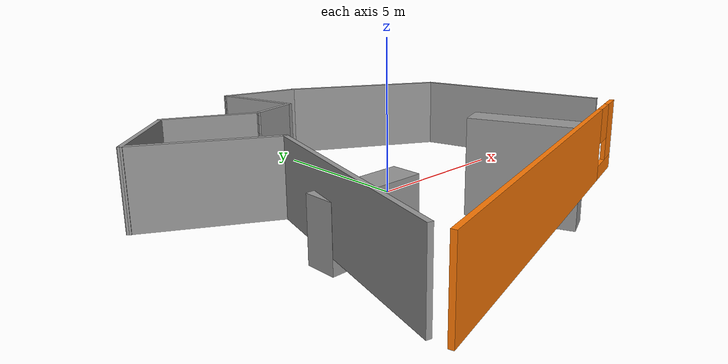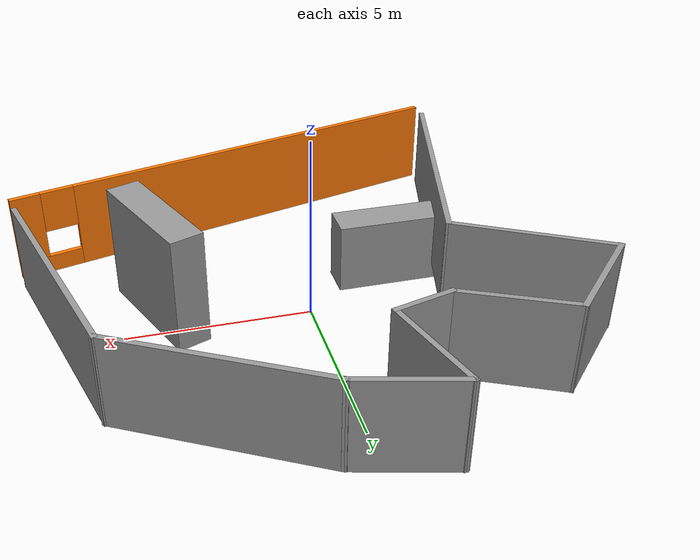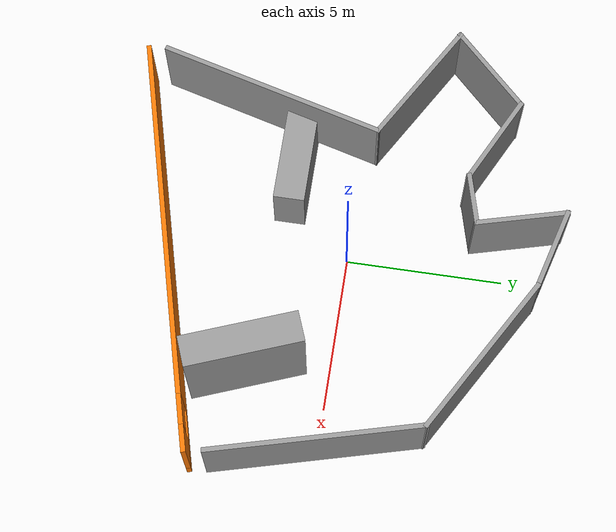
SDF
<?xml version='1.0'?>
<sdf version='1.6'>
  <model name='Untitled'>
    <link name='Wall_0'>
      <pose frame=''>-6.27688 3.71893 0 0 0 -2.35619</pose>
      <self_collide>0</self_collide>
      <kinematic>0</kinematic>
      <visual name='Wall_0_Visual'>
        <pose frame=''>0 0 1.25 0 -0 0</pose>
        <geometry>
          <box>
            <size>3.25 0.15 2.5</size>
          </box>
        </geometry>
        <material>
          <script>
            <uri>file://media/materials/scripts/gazebo.material</uri>
            <name>Gazebo/Grey</name>
          </script>
          <ambient>1 1 1 1</ambient>
          <shader type='pixel'/>
          <diffuse>0.7 0.7 0.7 1</diffuse>
          <specular>0.01 0.01 0.01 1</specular>
          <emissive>0 0 0 1</emissive>
        </material>
        <meta>
          <layer>0</layer>
        </meta>
        <transparency>0</transparency>
        <cast_shadows>1</cast_shadows>
      </visual>
      <collision name='Wall_0_Collision'>
        <laser_retro>0</laser_retro>
        <max_contacts>10</max_contacts>
        <pose frame=''>0 0 1.25 0 -0 0</pose>
        <geometry>
          <box>
            <size>3.25 0.15 2.5</size>
          </box>
        </geometry>
        <surface>
          <friction>
            <ode>
              <mu>1</mu>
              <mu2>1</mu2>
              <fdir1>0 0 0</fdir1>
              <slip1>0</slip1>
              <slip2>0</slip2>
            </ode>
            <torsional>
              <coefficient>1</coefficient>
              <patch_radius>0</patch_radius>
              <surface_radius>0</surface_radius>
              <use_patch_radius>1</use_patch_radius>
              <ode>
                <slip>0</slip>
              </ode>
            </torsional>
          </friction>
          <bounce>
            <restitution_coefficient>0</restitution_coefficient>
            <threshold>1e+06</threshold>
          </bounce>
          <contact>
            <collide_without_contact>0</collide_without_contact>
            <collide_without_contact_bitmask>1</collide_without_contact_bitmask>
            <collide_bitmask>1</collide_bitmask>
            <ode>
              <soft_cfm>0</soft_cfm>
              <soft_erp>0.2</soft_erp>
              <kp>1e+13</kp>
              <kd>1</kd>
              <max_vel>0.01</max_vel>
              <min_depth>0</min_depth>
            </ode>
            <bullet>
              <split_impulse>1</split_impulse>
              <split_impulse_penetration_threshold>-0.01</split_impulse_penetration_threshold>
              <soft_cfm>0</soft_cfm>
              <soft_erp>0.2</soft_erp>
              <kp>1e+13</kp>
              <kd>1</kd>
            </bullet>
          </contact>
        </surface>
      </collision>
    </link>
    <link name='Wall_1'>
      <pose frame=''>-5.48929 1.53542 0 0 0 -0.523599</pose>
      <self_collide>0</self_collide>
      <kinematic>0</kinematic>
      <visual name='Wall_1_Visual'>
        <pose frame=''>0 0 1.25 0 -0 0</pose>
        <geometry>
          <box>
            <size>4.5 0.15 2.5</size>
          </box>
        </geometry>
        <material>
          <script>
            <uri>file://media/materials/scripts/gazebo.material</uri>
            <name>Gazebo/Grey</name>
          </script>
          <ambient>1 1 1 1</ambient>
          <shader type='pixel'/>
          <diffuse>0.7 0.7 0.7 1</diffuse>
          <specular>0.01 0.01 0.01 1</specular>
          <emissive>0 0 0 1</emissive>
        </material>
        <meta>
          <layer>0</layer>
        </meta>
        <transparency>0</transparency>
        <cast_shadows>1</cast_shadows>
      </visual>
      <collision name='Wall_1_Collision'>
        <laser_retro>0</laser_retro>
        <max_contacts>10</max_contacts>
        <pose frame=''>0 0 1.25 0 -0 0</pose>
        <geometry>
          <box>
            <size>4.5 0.15 2.5</size>
          </box>
        </geometry>
        <surface>
          <friction>
            <ode>
              <mu>1</mu>
              <mu2>1</mu2>
              <fdir1>0 0 0</fdir1>
              <slip1>0</slip1>
              <slip2>0</slip2>
            </ode>
            <torsional>
              <coefficient>1</coefficient>
              <patch_radius>0</patch_radius>
              <surface_radius>0</surface_radius>
              <use_patch_radius>1</use_patch_radius>
              <ode>
                <slip>0</slip>
              </ode>
            </torsional>
          </friction>
          <bounce>
            <restitution_coefficient>0</restitution_coefficient>
            <threshold>1e+06</threshold>
          </bounce>
          <contact>
            <collide_without_contact>0</collide_without_contact>
            <collide_without_contact_bitmask>1</collide_without_contact_bitmask>
            <collide_bitmask>1</collide_bitmask>
            <ode>
              <soft_cfm>0</soft_cfm>
              <soft_erp>0.2</soft_erp>
              <kp>1e+13</kp>
              <kd>1</kd>
              <max_vel>0.01</max_vel>
              <min_depth>0</min_depth>
            </ode>
            <bullet>
              <split_impulse>1</split_impulse>
              <split_impulse_penetration_threshold>-0.01</split_impulse_penetration_threshold>
              <soft_cfm>0</soft_cfm>
              <soft_erp>0.2</soft_erp>
              <kp>1e+13</kp>
              <kd>1</kd>
            </bullet>
          </contact>
        </surface>
      </collision>
    </link>
    <link name='Wall_2'>
      <pose frame=''>-4.55684 -3.10186 0 0 0 -1.8326</pose>
      <self_collide>0</self_collide>
      <kinematic>0</kinematic>
      <visual name='Wall_2_Visual'>
        <pose frame=''>0 0 1.25 0 -0 0</pose>
        <geometry>
          <box>
            <size>7.5 0.15 2.5</size>
          </box>
        </geometry>
        <material>
          <script>
            <uri>file://media/materials/scripts/gazebo.material</uri>
            <name>Gazebo/Grey</name>
          </script>
          <ambient>1 1 1 1</ambient>
          <shader type='pixel'/>
          <diffuse>0.7 0.7 0.7 1</diffuse>
          <specular>0.01 0.01 0.01 1</specular>
          <emissive>0 0 0 1</emissive>
        </material>
        <meta>
          <layer>0</layer>
        </meta>
        <transparency>0</transparency>
        <cast_shadows>1</cast_shadows>
      </visual>
      <collision name='Wall_2_Collision'>
        <laser_retro>0</laser_retro>
        <max_contacts>10</max_contacts>
        <pose frame=''>0 0 1.25 0 -0 0</pose>
        <geometry>
          <box>
            <size>7.5 0.15 2.5</size>
          </box>
        </geometry>
        <surface>
          <friction>
            <ode>
              <mu>1</mu>
              <mu2>1</mu2>
              <fdir1>0 0 0</fdir1>
              <slip1>0</slip1>
              <slip2>0</slip2>
            </ode>
            <torsional>
              <coefficient>1</coefficient>
              <patch_radius>0</patch_radius>
              <surface_radius>0</surface_radius>
              <use_patch_radius>1</use_patch_radius>
              <ode>
                <slip>0</slip>
              </ode>
            </torsional>
          </friction>
          <bounce>
            <restitution_coefficient>0</restitution_coefficient>
            <threshold>1e+06</threshold>
          </bounce>
          <contact>
            <collide_without_contact>0</collide_without_contact>
            <collide_without_contact_bitmask>1</collide_without_contact_bitmask>
            <collide_bitmask>1</collide_bitmask>
            <ode>
              <soft_cfm>0</soft_cfm>
              <soft_erp>0.2</soft_erp>
              <kp>1e+13</kp>
              <kd>1</kd>
              <max_vel>0.01</max_vel>
              <min_depth>0</min_depth>
            </ode>
            <bullet>
              <split_impulse>1</split_impulse>
              <split_impulse_penetration_threshold>-0.01</split_impulse_penetration_threshold>
              <soft_cfm>0</soft_cfm>
              <soft_erp>0.2</soft_erp>
              <kp>1e+13</kp>
              <kd>1</kd>
            </bullet>
          </contact>
        </surface>
      </collision>
    </link>
    <link name='Wall_3'>
      <pose frame=''>1.02123 -5.51923 0 0 -0 0.261799</pose>
      <self_collide>0</self_collide>
      <kinematic>0</kinematic>
      <visual name='Wall_3_Visual_0'>
        <pose frame=''>-0.895801 0 1.25 0 -0 0</pose>
        <geometry>
          <box>
            <size>11.7084 0.15 2.5</size>
          </box>
        </geometry>
        <material>
          <script>
            <uri>file://media/materials/scripts/gazebo.material</uri>
            <name>Gazebo/Grey</name>
          </script>
          <ambient>0.996078 0.47451 0.0196078 1</ambient>
          <shader type='pixel'/>
          <diffuse>0.7 0.7 0.7 1</diffuse>
          <specular>0.01 0.01 0.01 1</specular>
          <emissive>0 0 0 1</emissive>
        </material>
        <meta>
          <layer>0</layer>
        </meta>
        <transparency>0</transparency>
        <cast_shadows>1</cast_shadows>
      </visual>
      <visual name='Wall_3_Visual_1'>
        <pose frame=''>5.8542 0 0.25 0 -0 0</pose>
        <geometry>
          <box>
            <size>1.7916 0.15 0.5</size>
          </box>
        </geometry>
        <material>
          <script>
            <uri>file://media/materials/scripts/gazebo.material</uri>
            <name>Gazebo/Grey</name>
          </script>
          <ambient>0.996078 0.47451 0.0196078 1</ambient>
          <shader type='pixel'/>
          <diffuse>0.7 0.7 0.7 1</diffuse>
          <specular>0.01 0.01 0.01 1</specular>
          <emissive>0 0 0 1</emissive>
        </material>
        <meta>
          <layer>0</layer>
        </meta>
        <transparency>0</transparency>
        <cast_shadows>1</cast_shadows>
      </visual>
      <visual name='Wall_3_Visual_2'>
        <pose frame=''>6.32604 0 1.5 0 -0 0</pose>
        <geometry>
          <box>
            <size>0.847917 0.15 2</size>
          </box>
        </geometry>
        <material>
          <script>
            <uri>file://media/materials/scripts/gazebo.material</uri>
            <name>Gazebo/Grey</name>
          </script>
          <ambient>0.996078 0.47451 0.0196078 1</ambient>
          <shader type='pixel'/>
          <diffuse>0.7 0.7 0.7 1</diffuse>
          <specular>0.01 0.01 0.01 1</specular>
          <emissive>0 0 0 1</emissive>
        </material>
        <meta>
          <layer>0</layer>
        </meta>
        <transparency>0</transparency>
        <cast_shadows>1</cast_shadows>
      </visual>
      <visual name='Wall_3_Visual_3'>
        <pose frame=''>5.43024 0 1.9 0 -0 0</pose>
        <geometry>
          <box>
            <size>0.943685 0.15 1.2</size>
          </box>
        </geometry>
        <material>
          <script>
            <uri>file://media/materials/scripts/gazebo.material</uri>
            <name>Gazebo/Grey</name>
          </script>
          <ambient>0.996078 0.47451 0.0196078 1</ambient>
          <shader type='pixel'/>
          <diffuse>0.7 0.7 0.7 1</diffuse>
          <specular>0.01 0.01 0.01 1</specular>
          <emissive>0 0 0 1</emissive>
        </material>
        <meta>
          <layer>0</layer>
        </meta>
        <transparency>0</transparency>
        <cast_shadows>1</cast_shadows>
      </visual>
      <collision name='Wall_3_Collision_0'>
        <laser_retro>0</laser_retro>
        <max_contacts>10</max_contacts>
        <pose frame=''>-0.895801 0 1.25 0 -0 0</pose>
        <geometry>
          <box>
            <size>11.7084 0.15 2.5</size>
          </box>
        </geometry>
        <surface>
          <friction>
            <ode>
              <mu>1</mu>
              <mu2>1</mu2>
              <fdir1>0 0 0</fdir1>
              <slip1>0</slip1>
              <slip2>0</slip2>
            </ode>
            <torsional>
              <coefficient>1</coefficient>
              <patch_radius>0</patch_radius>
              <surface_radius>0</surface_radius>
              <use_patch_radius>1</use_patch_radius>
              <ode>
                <slip>0</slip>
              </ode>
            </torsional>
          </friction>
          <bounce>
            <restitution_coefficient>0</restitution_coefficient>
            <threshold>1e+06</threshold>
          </bounce>
          <contact>
            <collide_without_contact>0</collide_without_contact>
            <collide_without_contact_bitmask>1</collide_without_contact_bitmask>
            <collide_bitmask>1</collide_bitmask>
            <ode>
              <soft_cfm>0</soft_cfm>
              <soft_erp>0.2</soft_erp>
              <kp>1e+13</kp>
              <kd>1</kd>
              <max_vel>0.01</max_vel>
              <min_depth>0</min_depth>
            </ode>
            <bullet>
              <split_impulse>1</split_impulse>
              <split_impulse_penetration_threshold>-0.01</split_impulse_penetration_threshold>
              <soft_cfm>0</soft_cfm>
              <soft_erp>0.2</soft_erp>
              <kp>1e+13</kp>
              <kd>1</kd>
            </bullet>
          </contact>
        </surface>
      </collision>
      <collision name='Wall_3_Collision_1'>
        <laser_retro>0</laser_retro>
        <max_contacts>10</max_contacts>
        <pose frame=''>5.8542 0 0.25 0 -0 0</pose>
        <geometry>
          <box>
            <size>1.7916 0.15 0.5</size>
          </box>
        </geometry>
        <surface>
          <friction>
            <ode>
              <mu>1</mu>
              <mu2>1</mu2>
              <fdir1>0 0 0</fdir1>
              <slip1>0</slip1>
              <slip2>0</slip2>
            </ode>
            <torsional>
              <coefficient>1</coefficient>
              <patch_radius>0</patch_radius>
              <surface_radius>0</surface_radius>
              <use_patch_radius>1</use_patch_radius>
              <ode>
                <slip>0</slip>
              </ode>
            </torsional>
          </friction>
          <bounce>
            <restitution_coefficient>0</restitution_coefficient>
            <threshold>1e+06</threshold>
          </bounce>
          <contact>
            <collide_without_contact>0</collide_without_contact>
            <collide_without_contact_bitmask>1</collide_without_contact_bitmask>
            <collide_bitmask>1</collide_bitmask>
            <ode>
              <soft_cfm>0</soft_cfm>
              <soft_erp>0.2</soft_erp>
              <kp>1e+13</kp>
              <kd>1</kd>
              <max_vel>0.01</max_vel>
              <min_depth>0</min_depth>
            </ode>
            <bullet>
              <split_impulse>1</split_impulse>
              <split_impulse_penetration_threshold>-0.01</split_impulse_penetration_threshold>
              <soft_cfm>0</soft_cfm>
              <soft_erp>0.2</soft_erp>
              <kp>1e+13</kp>
              <kd>1</kd>
            </bullet>
          </contact>
        </surface>
      </collision>
      <collision name='Wall_3_Collision_2'>
        <laser_retro>0</laser_retro>
        <max_contacts>10</max_contacts>
        <pose frame=''>6.32604 0 1.5 0 -0 0</pose>
        <geometry>
          <box>
            <size>0.847917 0.15 2</size>
          </box>
        </geometry>
        <surface>
          <friction>
            <ode>
              <mu>1</mu>
              <mu2>1</mu2>
              <fdir1>0 0 0</fdir1>
              <slip1>0</slip1>
              <slip2>0</slip2>
            </ode>
            <torsional>
              <coefficient>1</coefficient>
              <patch_radius>0</patch_radius>
              <surface_radius>0</surface_radius>
              <use_patch_radius>1</use_patch_radius>
              <ode>
                <slip>0</slip>
              </ode>
            </torsional>
          </friction>
          <bounce>
            <restitution_coefficient>0</restitution_coefficient>
            <threshold>1e+06</threshold>
          </bounce>
          <contact>
            <collide_without_contact>0</collide_without_contact>
            <collide_without_contact_bitmask>1</collide_without_contact_bitmask>
            <collide_bitmask>1</collide_bitmask>
            <ode>
              <soft_cfm>0</soft_cfm>
              <soft_erp>0.2</soft_erp>
              <kp>1e+13</kp>
              <kd>1</kd>
              <max_vel>0.01</max_vel>
              <min_depth>0</min_depth>
            </ode>
            <bullet>
              <split_impulse>1</split_impulse>
              <split_impulse_penetration_threshold>-0.01</split_impulse_penetration_threshold>
              <soft_cfm>0</soft_cfm>
              <soft_erp>0.2</soft_erp>
              <kp>1e+13</kp>
              <kd>1</kd>
            </bullet>
          </contact>
        </surface>
      </collision>
      <collision name='Wall_3_Collision_3'>
        <laser_retro>0</laser_retro>
        <max_contacts>10</max_contacts>
        <pose frame=''>5.43024 0 1.9 0 -0 0</pose>
        <geometry>
          <box>
            <size>0.943685 0.15 1.2</size>
          </box>
        </geometry>
        <surface>
          <friction>
            <ode>
              <mu>1</mu>
              <mu2>1</mu2>
              <fdir1>0 0 0</fdir1>
              <slip1>0</slip1>
              <slip2>0</slip2>
            </ode>
            <torsional>
              <coefficient>1</coefficient>
              <patch_radius>0</patch_radius>
              <surface_radius>0</surface_radius>
              <use_patch_radius>1</use_patch_radius>
              <ode>
                <slip>0</slip>
              </ode>
            </torsional>
          </friction>
          <bounce>
            <restitution_coefficient>0</restitution_coefficient>
            <threshold>1e+06</threshold>
          </bounce>
          <contact>
            <collide_without_contact>0</collide_without_contact>
            <collide_without_contact_bitmask>1</collide_without_contact_bitmask>
            <collide_bitmask>1</collide_bitmask>
            <ode>
              <soft_cfm>0</soft_cfm>
              <soft_erp>0.2</soft_erp>
              <kp>1e+13</kp>
              <kd>1</kd>
              <max_vel>0.01</max_vel>
              <min_depth>0</min_depth>
            </ode>
            <bullet>
              <split_impulse>1</split_impulse>
              <split_impulse_penetration_threshold>-0.01</split_impulse_penetration_threshold>
              <soft_cfm>0</soft_cfm>
              <soft_erp>0.2</soft_erp>
              <kp>1e+13</kp>
              <kd>1</kd>
            </bullet>
          </contact>
        </surface>
      </collision>
    </link>
    <link name='Wall_4'>
      <pose frame=''>6.533 -0.008848 0 0 -0 1.8326</pose>
      <self_collide>0</self_collide>
      <kinematic>0</kinematic>
      <visual name='Wall_4_Visual'>
        <pose frame=''>0 0 1.25 0 -0 0</pose>
        <geometry>
          <box>
            <size>6.75 0.15 2.5</size>
          </box>
        </geometry>
        <material>
          <script>
            <uri>file://media/materials/scripts/gazebo.material</uri>
            <name>Gazebo/Grey</name>
          </script>
          <ambient>1 1 1 1</ambient>
          <shader type='pixel'/>
          <diffuse>0.7 0.7 0.7 1</diffuse>
          <specular>0.01 0.01 0.01 1</specular>
          <emissive>0 0 0 1</emissive>
        </material>
        <meta>
          <layer>0</layer>
        </meta>
        <transparency>0</transparency>
        <cast_shadows>1</cast_shadows>
      </visual>
      <collision name='Wall_4_Collision'>
        <laser_retro>0</laser_retro>
        <max_contacts>10</max_contacts>
        <pose frame=''>0 0 1.25 0 -0 0</pose>
        <geometry>
          <box>
            <size>6.75 0.15 2.5</size>
          </box>
        </geometry>
        <surface>
          <friction>
            <ode>
              <mu>1</mu>
              <mu2>1</mu2>
              <fdir1>0 0 0</fdir1>
              <slip1>0</slip1>
              <slip2>0</slip2>
            </ode>
            <torsional>
              <coefficient>1</coefficient>
              <patch_radius>0</patch_radius>
              <surface_radius>0</surface_radius>
              <use_patch_radius>1</use_patch_radius>
              <ode>
                <slip>0</slip>
              </ode>
            </torsional>
          </friction>
          <bounce>
            <restitution_coefficient>0</restitution_coefficient>
            <threshold>1e+06</threshold>
          </bounce>
          <contact>
            <collide_without_contact>0</collide_without_contact>
            <collide_without_contact_bitmask>1</collide_without_contact_bitmask>
            <collide_bitmask>1</collide_bitmask>
            <ode>
              <soft_cfm>0</soft_cfm>
              <soft_erp>0.2</soft_erp>
              <kp>1e+13</kp>
              <kd>1</kd>
              <max_vel>0.01</max_vel>
              <min_depth>0</min_depth>
            </ode>
            <bullet>
              <split_impulse>1</split_impulse>
              <split_impulse_penetration_threshold>-0.01</split_impulse_penetration_threshold>
              <soft_cfm>0</soft_cfm>
              <soft_erp>0.2</soft_erp>
              <kp>1e+13</kp>
              <kd>1</kd>
            </bullet>
          </contact>
        </surface>
      </collision>
    </link>
    <link name='Wall_5'>
      <pose frame=''>3.25403 4.57871 0 0 -0 2.61799</pose>
      <self_collide>0</self_collide>
      <kinematic>0</kinematic>
      <visual name='Wall_5_Visual'>
        <pose frame=''>0 0 1.25 0 -0 0</pose>
        <geometry>
          <box>
            <size>5.75 0.15 2.5</size>
          </box>
        </geometry>
        <material>
          <script>
            <uri>file://media/materials/scripts/gazebo.material</uri>
            <name>Gazebo/Grey</name>
          </script>
          <ambient>1 1 1 1</ambient>
          <shader type='pixel'/>
          <diffuse>0.7 0.7 0.7 1</diffuse>
          <specular>0.01 0.01 0.01 1</specular>
          <emissive>0 0 0 1</emissive>
        </material>
        <meta>
          <layer>0</layer>
        </meta>
        <transparency>0</transparency>
        <cast_shadows>1</cast_shadows>
      </visual>
      <collision name='Wall_5_Collision'>
        <laser_retro>0</laser_retro>
        <max_contacts>10</max_contacts>
        <pose frame=''>0 0 1.25 0 -0 0</pose>
        <geometry>
          <box>
            <size>5.75 0.15 2.5</size>
          </box>
        </geometry>
        <surface>
          <friction>
            <ode>
              <mu>1</mu>
              <mu2>1</mu2>
              <fdir1>0 0 0</fdir1>
              <slip1>0</slip1>
              <slip2>0</slip2>
            </ode>
            <torsional>
              <coefficient>1</coefficient>
              <patch_radius>0</patch_radius>
              <surface_radius>0</surface_radius>
              <use_patch_radius>1</use_patch_radius>
              <ode>
                <slip>0</slip>
              </ode>
            </torsional>
          </friction>
          <bounce>
            <restitution_coefficient>0</restitution_coefficient>
            <threshold>1e+06</threshold>
          </bounce>
          <contact>
            <collide_without_contact>0</collide_without_contact>
            <collide_without_contact_bitmask>1</collide_without_contact_bitmask>
            <collide_bitmask>1</collide_bitmask>
            <ode>
              <soft_cfm>0</soft_cfm>
              <soft_erp>0.2</soft_erp>
              <kp>1e+13</kp>
              <kd>1</kd>
              <max_vel>0.01</max_vel>
              <min_depth>0</min_depth>
            </ode>
            <bullet>
              <split_impulse>1</split_impulse>
              <split_impulse_penetration_threshold>-0.01</split_impulse_penetration_threshold>
              <soft_cfm>0</soft_cfm>
              <soft_erp>0.2</soft_erp>
              <kp>1e+13</kp>
              <kd>1</kd>
            </bullet>
          </contact>
        </surface>
      </collision>
    </link>
    <link name='Wall_6'>
      <pose frame=''>-0.426546 6.31517 0 0 -0 2.87979</pose>
      <self_collide>0</self_collide>
      <kinematic>0</kinematic>
      <visual name='Wall_6_Visual'>
        <pose frame=''>0 0 1.25 0 -0 0</pose>
        <geometry>
          <box>
            <size>2.75 0.15 2.5</size>
          </box>
        </geometry>
        <material>
          <script>
            <uri>file://media/materials/scripts/gazebo.material</uri>
            <name>Gazebo/Grey</name>
          </script>
          <ambient>1 1 1 1</ambient>
          <shader type='pixel'/>
          <diffuse>0.7 0.7 0.7 1</diffuse>
          <specular>0.01 0.01 0.01 1</specular>
          <emissive>0 0 0 1</emissive>
        </material>
        <meta>
          <layer>0</layer>
        </meta>
        <transparency>0</transparency>
        <cast_shadows>1</cast_shadows>
      </visual>
      <collision name='Wall_6_Collision'>
        <laser_retro>0</laser_retro>
        <max_contacts>10</max_contacts>
        <pose frame=''>0 0 1.25 0 -0 0</pose>
        <geometry>
          <box>
            <size>2.75 0.15 2.5</size>
          </box>
        </geometry>
        <surface>
          <friction>
            <ode>
              <mu>1</mu>
              <mu2>1</mu2>
              <fdir1>0 0 0</fdir1>
              <slip1>0</slip1>
              <slip2>0</slip2>
            </ode>
            <torsional>
              <coefficient>1</coefficient>
              <patch_radius>0</patch_radius>
              <surface_radius>0</surface_radius>
              <use_patch_radius>1</use_patch_radius>
              <ode>
                <slip>0</slip>
              </ode>
            </torsional>
          </friction>
          <bounce>
            <restitution_coefficient>0</restitution_coefficient>
            <threshold>1e+06</threshold>
          </bounce>
          <contact>
            <collide_without_contact>0</collide_without_contact>
            <collide_without_contact_bitmask>1</collide_without_contact_bitmask>
            <collide_bitmask>1</collide_bitmask>
            <ode>
              <soft_cfm>0</soft_cfm>
              <soft_erp>0.2</soft_erp>
              <kp>1e+13</kp>
              <kd>1</kd>
              <max_vel>0.01</max_vel>
              <min_depth>0</min_depth>
            </ode>
            <bullet>
              <split_impulse>1</split_impulse>
              <split_impulse_penetration_threshold>-0.01</split_impulse_penetration_threshold>
              <soft_cfm>0</soft_cfm>
              <soft_erp>0.2</soft_erp>
              <kp>1e+13</kp>
              <kd>1</kd>
            </bullet>
          </contact>
        </surface>
      </collision>
    </link>
    <link name='Wall_7'>
      <pose frame=''>-1.31343 5.27519 0 0 0 -1.309</pose>
      <self_collide>0</self_collide>
      <kinematic>0</kinematic>
      <visual name='Wall_7_Visual'>
        <pose frame=''>0 0 1.25 0 -0 0</pose>
        <geometry>
          <box>
            <size>3 0.15 2.5</size>
          </box>
        </geometry>
        <material>
          <script>
            <uri>file://media/materials/scripts/gazebo.material</uri>
            <name>Gazebo/Grey</name>
          </script>
          <ambient>1 1 1 1</ambient>
          <shader type='pixel'/>
          <diffuse>0.7 0.7 0.7 1</diffuse>
          <specular>0.01 0.01 0.01 1</specular>
          <emissive>0 0 0 1</emissive>
        </material>
        <meta>
          <layer>0</layer>
        </meta>
        <transparency>0</transparency>
        <cast_shadows>1</cast_shadows>
      </visual>
      <collision name='Wall_7_Collision'>
        <laser_retro>0</laser_retro>
        <max_contacts>10</max_contacts>
        <pose frame=''>0 0 1.25 0 -0 0</pose>
        <geometry>
          <box>
            <size>3 0.15 2.5</size>
          </box>
        </geometry>
        <surface>
          <friction>
            <ode>
              <mu>1</mu>
              <mu2>1</mu2>
              <fdir1>0 0 0</fdir1>
              <slip1>0</slip1>
              <slip2>0</slip2>
            </ode>
            <torsional>
              <coefficient>1</coefficient>
              <patch_radius>0</patch_radius>
              <surface_radius>0</surface_radius>
              <use_patch_radius>1</use_patch_radius>
              <ode>
                <slip>0</slip>
              </ode>
            </torsional>
          </friction>
          <bounce>
            <restitution_coefficient>0</restitution_coefficient>
            <threshold>1e+06</threshold>
          </bounce>
          <contact>
            <collide_without_contact>0</collide_without_contact>
            <collide_without_contact_bitmask>1</collide_without_contact_bitmask>
            <collide_bitmask>1</collide_bitmask>
            <ode>
              <soft_cfm>0</soft_cfm>
              <soft_erp>0.2</soft_erp>
              <kp>1e+13</kp>
              <kd>1</kd>
              <max_vel>0.01</max_vel>
              <min_depth>0</min_depth>
            </ode>
            <bullet>
              <split_impulse>1</split_impulse>
              <split_impulse_penetration_threshold>-0.01</split_impulse_penetration_threshold>
              <soft_cfm>0</soft_cfm>
              <soft_erp>0.2</soft_erp>
              <kp>1e+13</kp>
              <kd>1</kd>
            </bullet>
          </contact>
        </surface>
      </collision>
    </link>
    <link name='Wall_8'>
      <pose frame=''>-1.71736 3.69169 0 0 0 -2.87979</pose>
      <self_collide>0</self_collide>
      <kinematic>0</kinematic>
      <visual name='Wall_8_Visual'>
        <pose frame=''>0 0 1.25 0 -0 0</pose>
        <geometry>
          <box>
            <size>1.75 0.15 2.5</size>
          </box>
        </geometry>
        <material>
          <script>
            <uri>file://media/materials/scripts/gazebo.material</uri>
            <name>Gazebo/Grey</name>
          </script>
          <ambient>1 1 1 1</ambient>
          <shader type='pixel'/>
          <diffuse>0.7 0.7 0.7 1</diffuse>
          <specular>0.01 0.01 0.01 1</specular>
          <emissive>0 0 0 1</emissive>
        </material>
        <meta>
          <layer>0</layer>
        </meta>
        <transparency>0</transparency>
        <cast_shadows>1</cast_shadows>
      </visual>
      <collision name='Wall_8_Collision'>
        <laser_retro>0</laser_retro>
        <max_contacts>10</max_contacts>
        <pose frame=''>0 0 1.25 0 -0 0</pose>
        <geometry>
          <box>
            <size>1.75 0.15 2.5</size>
          </box>
        </geometry>
        <surface>
          <friction>
            <ode>
              <mu>1</mu>
              <mu2>1</mu2>
              <fdir1>0 0 0</fdir1>
              <slip1>0</slip1>
              <slip2>0</slip2>
            </ode>
            <torsional>
              <coefficient>1</coefficient>
              <patch_radius>0</patch_radius>
              <surface_radius>0</surface_radius>
              <use_patch_radius>1</use_patch_radius>
              <ode>
                <slip>0</slip>
              </ode>
            </torsional>
          </friction>
          <bounce>
            <restitution_coefficient>0</restitution_coefficient>
            <threshold>1e+06</threshold>
          </bounce>
          <contact>
            <collide_without_contact>0</collide_without_contact>
            <collide_without_contact_bitmask>1</collide_without_contact_bitmask>
            <collide_bitmask>1</collide_bitmask>
            <ode>
              <soft_cfm>0</soft_cfm>
              <soft_erp>0.2</soft_erp>
              <kp>1e+13</kp>
              <kd>1</kd>
              <max_vel>0.01</max_vel>
              <min_depth>0</min_depth>
            </ode>
            <bullet>
              <split_impulse>1</split_impulse>
              <split_impulse_penetration_threshold>-0.01</split_impulse_penetration_threshold>
              <soft_cfm>0</soft_cfm>
              <soft_erp>0.2</soft_erp>
              <kp>1e+13</kp>
              <kd>1</kd>
            </bullet>
          </contact>
        </surface>
      </collision>
    </link>
    <link name='Wall_9'>
      <pose frame=''>-3.83548 4.14979 0 0 -0 2.68244</pose>
      <self_collide>0</self_collide>
      <kinematic>0</kinematic>
      <visual name='Wall_9_Visual'>
        <pose frame=''>0 0 1.25 0 -0 0</pose>
        <geometry>
          <box>
            <size>3.15166 0.15 2.5</size>
          </box>
        </geometry>
        <material>
          <script>
            <uri>file://media/materials/scripts/gazebo.material</uri>
            <name>Gazebo/Grey</name>
          </script>
          <ambient>1 1 1 1</ambient>
          <shader type='pixel'/>
          <diffuse>0.7 0.7 0.7 1</diffuse>
          <specular>0.01 0.01 0.01 1</specular>
          <emissive>0 0 0 1</emissive>
        </material>
        <meta>
          <layer>0</layer>
        </meta>
        <transparency>0</transparency>
        <cast_shadows>1</cast_shadows>
      </visual>
      <collision name='Wall_9_Collision'>
        <laser_retro>0</laser_retro>
        <max_contacts>10</max_contacts>
        <pose frame=''>0 0 1.25 0 -0 0</pose>
        <geometry>
          <box>
            <size>3.15166 0.15 2.5</size>
          </box>
        </geometry>
        <surface>
          <friction>
            <ode>
              <mu>1</mu>
              <mu2>1</mu2>
              <fdir1>0 0 0</fdir1>
              <slip1>0</slip1>
              <slip2>0</slip2>
            </ode>
            <torsional>
              <coefficient>1</coefficient>
              <patch_radius>0</patch_radius>
              <surface_radius>0</surface_radius>
              <use_patch_radius>1</use_patch_radius>
              <ode>
                <slip>0</slip>
              </ode>
            </torsional>
          </friction>
          <bounce>
            <restitution_coefficient>0</restitution_coefficient>
            <threshold>1e+06</threshold>
          </bounce>
          <contact>
            <collide_without_contact>0</collide_without_contact>
            <collide_without_contact_bitmask>1</collide_without_contact_bitmask>
            <collide_bitmask>1</collide_bitmask>
            <ode>
              <soft_cfm>0</soft_cfm>
              <soft_erp>0.2</soft_erp>
              <kp>1e+13</kp>
              <kd>1</kd>
              <max_vel>0.01</max_vel>
              <min_depth>0</min_depth>
            </ode>
            <bullet>
              <split_impulse>1</split_impulse>
              <split_impulse_penetration_threshold>-0.01</split_impulse_penetration_threshold>
              <soft_cfm>0</soft_cfm>
              <soft_erp>0.2</soft_erp>
              <kp>1e+13</kp>
              <kd>1</kd>
            </bullet>
          </contact>
        </surface>
      </collision>
    </link>
    <link name='link_0'>
      <pose frame=''>3.76022 -2.70805 0.5 0 -0 0.369481</pose>
      <inertial>
        <mass>12.9633</mass>
        <inertia>
          <ixx>28.1225</ixx>
          <ixy>0</ixy>
          <ixz>0</ixz>
          <iyy>13.8722</iyy>
          <iyz>0</iyz>
          <izz>16.4108</izz>
        </inertia>
        <pose frame=''>0 0 0 0 -0 0</pose>
      </inertial>
      <visual name='visual'>
        <pose frame=''>0 0 0 0 -0 0</pose>
        <geometry>
          <box>
            <size>1 3.76715 3.44114</size>
          </box>
        </geometry>
        <material>
          <lighting>1</lighting>
          <script>
            <uri>file://media/materials/scripts/gazebo.material</uri>
            <name>Gazebo/Grey</name>
          </script>
          <shader type='pixel'/>
          <ambient>0.3 0.3 0.3 1</ambient>
          <diffuse>0.7 0.7 0.7 1</diffuse>
          <specular>0.01 0.01 0.01 1</specular>
          <emissive>0 0 0 1</emissive>
        </material>
        <transparency>0</transparency>
        <cast_shadows>1</cast_shadows>
      </visual>
      <collision name='collision'>
        <laser_retro>0</laser_retro>
        <max_contacts>10</max_contacts>
        <pose frame=''>0 0 0 0 -0 0</pose>
        <geometry>
          <box>
            <size>1 3.76715 3.44114</size>
          </box>
        </geometry>
        <surface>
          <friction>
            <ode>
              <mu>1</mu>
              <mu2>1</mu2>
              <fdir1>0 0 0</fdir1>
              <slip1>0</slip1>
              <slip2>0</slip2>
            </ode>
            <torsional>
              <coefficient>1</coefficient>
              <patch_radius>0</patch_radius>
              <surface_radius>0</surface_radius>
              <use_patch_radius>1</use_patch_radius>
              <ode>
                <slip>0</slip>
              </ode>
            </torsional>
          </friction>
          <bounce>
            <restitution_coefficient>0</restitution_coefficient>
            <threshold>1e+06</threshold>
          </bounce>
          <contact>
            <collide_without_contact>0</collide_without_contact>
            <collide_without_contact_bitmask>1</collide_without_contact_bitmask>
            <collide_bitmask>1</collide_bitmask>
            <ode>
              <soft_cfm>0</soft_cfm>
              <soft_erp>0.2</soft_erp>
              <kp>1e+13</kp>
              <kd>1</kd>
              <max_vel>0.01</max_vel>
              <min_depth>0</min_depth>
            </ode>
            <bullet>
              <split_impulse>1</split_impulse>
              <split_impulse_penetration_threshold>-0.01</split_impulse_penetration_threshold>
              <soft_cfm>0</soft_cfm>
              <soft_erp>0.2</soft_erp>
              <kp>1e+13</kp>
              <kd>1</kd>
            </bullet>
          </contact>
        </surface>
      </collision>
    </link>
    <link name='link_1'>
      <pose frame=''>-2.89315 -2.06857 0.5 0 -0 0</pose>
      <inertial>
        <mass>6.48681</mass>
        <inertia>
          <ixx>2.7495</ixx>
          <ixy>0</ixy>
          <ixz>0</ixz>
          <iyy>7.77541</iyy>
          <iyz>0</iyz>
          <izz>6.10704</izz>
        </inertia>
        <pose frame=''>0 0 0 0 -0 0</pose>
      </inertial>
      <visual name='visual'>
        <pose frame=''>0 0 0 0 -0 0</pose>
        <geometry>
          <box>
            <size>3.20897 1 2.02147</size>
          </box>
        </geometry>
        <material>
          <lighting>1</lighting>
          <script>
            <uri>file://media/materials/scripts/gazebo.material</uri>
            <name>Gazebo/Grey</name>
          </script>
          <shader type='pixel'/>
          <ambient>0.3 0.3 0.3 1</ambient>
          <diffuse>0.7 0.7 0.7 1</diffuse>
          <specular>0.01 0.01 0.01 1</specular>
          <emissive>0 0 0 1</emissive>
        </material>
        <transparency>0</transparency>
        <cast_shadows>1</cast_shadows>
      </visual>
      <collision name='collision'>
        <laser_retro>0</laser_retro>
        <max_contacts>10</max_contacts>
        <pose frame=''>0 0 0 0 -0 0</pose>
        <geometry>
          <box>
            <size>3.20897 1 2.02147</size>
          </box>
        </geometry>
        <surface>
          <friction>
            <ode>
              <mu>1</mu>
              <mu2>1</mu2>
              <fdir1>0 0 0</fdir1>
              <slip1>0</slip1>
              <slip2>0</slip2>
            </ode>
            <torsional>
              <coefficient>1</coefficient>
              <patch_radius>0</patch_radius>
              <surface_radius>0</surface_radius>
              <use_patch_radius>1</use_patch_radius>
              <ode>
                <slip>0</slip>
              </ode>
            </torsional>
          </friction>
          <bounce>
            <restitution_coefficient>0</restitution_coefficient>
            <threshold>1e+06</threshold>
          </bounce>
          <contact>
            <collide_without_contact>0</collide_without_contact>
            <collide_without_contact_bitmask>1</collide_without_contact_bitmask>
            <collide_bitmask>1</collide_bitmask>
            <ode>
              <soft_cfm>0</soft_cfm>
              <soft_erp>0.2</soft_erp>
              <kp>1e+13</kp>
              <kd>1</kd>
              <max_vel>0.01</max_vel>
              <min_depth>0</min_depth>
            </ode>
            <bullet>
              <split_impulse>1</split_impulse>
              <split_impulse_penetration_threshold>-0.01</split_impulse_penetration_threshold>
              <soft_cfm>0</soft_cfm>
              <soft_erp>0.2</soft_erp>
              <kp>1e+13</kp>
              <kd>1</kd>
            </bullet>
          </contact>
        </surface>
      </collision>
    </link>
    <static>1</static>
    <allow_auto_disable>1</allow_auto_disable>
  </model>
</sdf>
